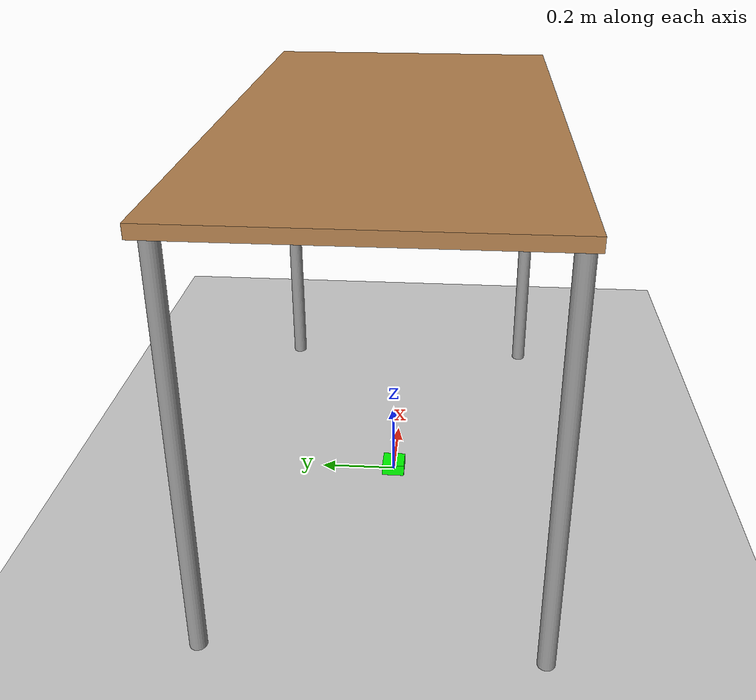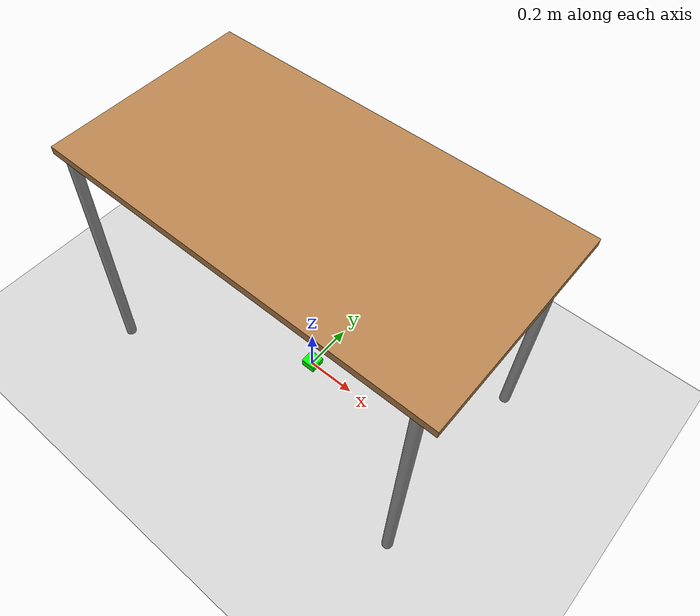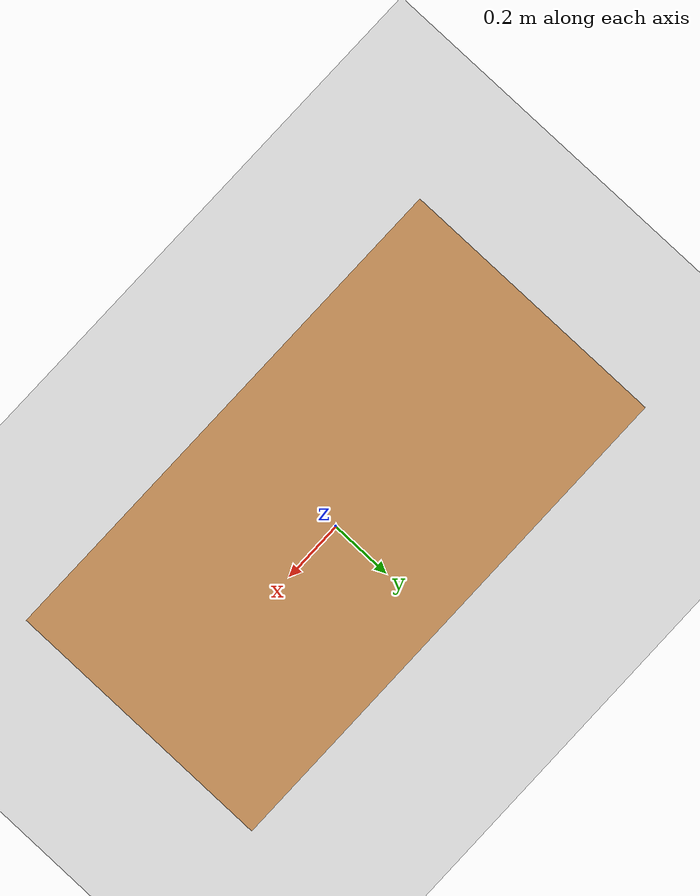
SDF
<?xml version="1.0" ?>
<sdf version="1.5">

  <world name="table">
    <!-- A global light source -->
    <include>
      <uri>model://sun</uri>
    </include>
    <!-- A ground plane -->
    <include>
      <uri>model://ground_plane</uri>
    </include>
    <!-- Table -->
    <include>
      <uri>model://table</uri>
    </include>
    <include>
      <uri>model://red_block</uri>
    </include>
    <include>
      <uri>model://blue_block</uri>
    </include>
    <include>
      <uri>model://green_block</uri>
    </include>
    <include>
      <uri>model://yellow_block</uri>
    </include>
  </world>
</sdf>

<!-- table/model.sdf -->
<sdf version="1.5">
  <model name="table">
    <static>true</static>
    <link name="link">
      <collision name="surface">
        <pose>0 0 1.0 0 0 0</pose>
        <geometry>
          <box>
            <size>1.5 0.8 0.03</size>
          </box>
        </geometry>
        <surface>
          <friction>
            <ode>
              <mu>0.6</mu>
              <mu2>0.6</mu2>
            </ode>
          </friction>
        </surface>
      </collision>
      <visual name="visual1">
        <pose>0 0 1.0 0 0 0</pose>
        <geometry>
          <box>
            <size>1.5 0.8 0.03</size>
          </box>
        </geometry>
        <material>
          <script>
            <uri>model://media/materials/scripts/gazebo.material</uri>
            <name>Gazebo/Wood</name>
          </script>
        </material>
      </visual>
      <collision name="front_left_leg">
        <pose>0.68 0.38 0.5 0 0 0</pose>
        <geometry>
          <cylinder>
            <radius>0.02</radius>
            <length>1.0</length>
          </cylinder>
        </geometry>
      </collision>
      <visual name="front_left_leg">
        <pose>0.68 0.38 0.5 0 0 0</pose>
        <geometry>
          <cylinder>
            <radius>0.02</radius>
            <length>1.0</length>
          </cylinder>
        </geometry>
        <material>
          <script>
            <uri>model://media/materials/scripts/gazebo.material</uri>
            <name>Gazebo/Grey</name>
          </script>
        </material>
      </visual>
      <collision name="front_right_leg">
        <pose>0.68 -0.38 0.5 0 0 0</pose>
        <geometry>
          <cylinder>
            <radius>0.02</radius>
            <length>1.0</length>
          </cylinder>
        </geometry>
      </collision>
      <visual name="front_right_leg">
        <pose>0.68 -0.38 0.5 0 0 0</pose>
        <geometry>
          <cylinder>
            <radius>0.02</radius>
            <length>1.0</length>
          </cylinder>
        </geometry>
        <material>
          <script>
            <uri>model://media/materials/scripts/gazebo.material</uri>
            <name>Gazebo/Grey</name>
          </script>
        </material>
      </visual>
      <collision name="back_right_leg">
        <pose>-0.68 -0.38 0.5 0 0 0</pose>
        <geometry>
          <cylinder>
            <radius>0.02</radius>
            <length>1.0</length>
          </cylinder>
        </geometry>
      </collision>
      <visual name="back_right_leg">
        <pose>-0.68 -0.38 0.5 0 0 0</pose>
        <geometry>
          <cylinder>
            <radius>0.02</radius>
            <length>1.0</length>
          </cylinder>
        </geometry>
        <material>
          <script>
            <uri>model://media/materials/scripts/gazebo.material</uri>
            <name>Gazebo/Grey</name>
          </script>
        </material>
      </visual>
      <collision name="back_left_leg">
        <pose>-0.68 0.38 0.5 0 0 0</pose>
        <geometry>
          <cylinder>
            <radius>0.02</radius>
            <length>1.0</length>
          </cylinder>
        </geometry>
      </collision>
      <visual name="back_left_leg">
        <pose>-0.68 0.38 0.5 0 0 0</pose>
        <geometry>
          <cylinder>
            <radius>0.02</radius>
            <length>1.0</length>
          </cylinder>
        </geometry>
        <material>
          <script>
            <uri>model://media/materials/scripts/gazebo.material</uri>
            <name>Gazebo/Grey</name>
          </script>
        </material>
      </visual>
    </link>
  </model>
</sdf>

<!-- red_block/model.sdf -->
<sdf version="1.6">
  <model name="red_block">
    <static>true</static>
    <link name="link">
      <inertial>
        <mass>0.05</mass>
        <inertia>
          <ixx>2.08e-5</ixx><iyy>2.08e-5</iyy><izz>2.08e-5</izz>
          <ixy>0</ixy><ixz>0</ixz><iyz>0</iyz>
        </inertia>
      </inertial>
      <!-- 無碰撞：純視覺 + SetWorldPose 驅動，避免與夾爪物理干擾 -->
      <visual name="vis">
        <geometry><box><size>0.03 0.025 0.05</size></box></geometry>
        <material>
          <ambient>0.8 0.0 0.0 1</ambient>
          <diffuse>0.8 0.0 0.0 1</diffuse>
          <specular>0.1 0.1 0.1 1</specular>
        </material>
      </visual>
    </link>
  </model>
</sdf>

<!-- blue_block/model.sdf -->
<sdf version="1.6">
  <model name="blue_block">
    <static>true</static>
    <link name="link">
      <visual name="vis">
        <geometry><box><size>0.03 0.025 0.05</size></box></geometry>
        <material>
          <ambient>0.0 0.15 1.0 1</ambient>
          <diffuse>0.0 0.15 1.0 1</diffuse>
          <specular>0.1 0.1 0.1 1</specular>
        </material>
      </visual>
    </link>
  </model>
</sdf>

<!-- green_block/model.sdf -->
<sdf version="1.10">
  <model name="green_block">
    <static>false</static>
    <link name="link">
      <inertial>
        <mass>0.03</mass>
        <inertia>
          <ixx>0.00001</ixx>
          <iyy>0.00001</iyy>
          <izz>0.00001</izz>
        </inertia>
      </inertial>

      <collision name="collision">
        <geometry>
          <box>
            <size>0.06 0.06 0.06</size>
          </box>
        </geometry>
      </collision>

      <visual name="visual">
        <geometry>
          <box>
            <size>0.06 0.06 0.06</size>
          </box>
        </geometry>
        <material>
          <ambient>0 1 0 1</ambient>
          <diffuse>0 1 0 1</diffuse>
        </material>
      </visual>
    </link>
  </model>
</sdf>

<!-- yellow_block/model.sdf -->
<sdf version="1.6">
  <model name="yellow_block">
    <static>true</static>
    <link name="link">
      <visual name="vis">
        <geometry><box><size>0.03 0.025 0.05</size></box></geometry>
        <material>
          <ambient>1.0 1.0 0.0 1</ambient>
          <diffuse>1.0 1.0 0.0 1</diffuse>
          <specular>0.1 0.1 0.1 1</specular>
        </material>
      </visual>
    </link>
  </model>
</sdf>
